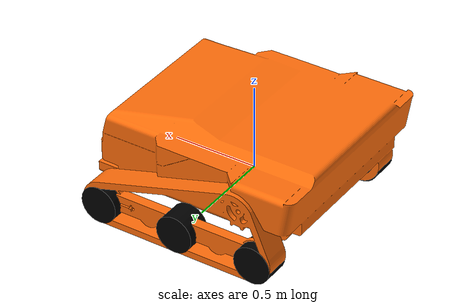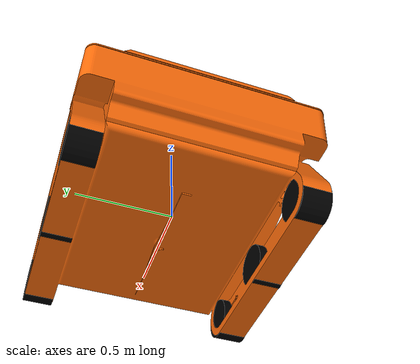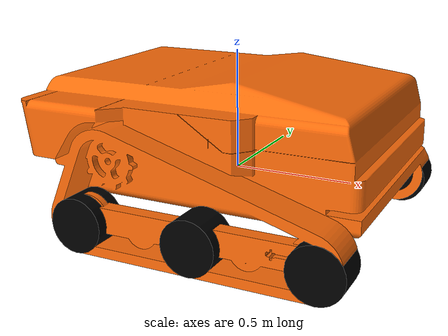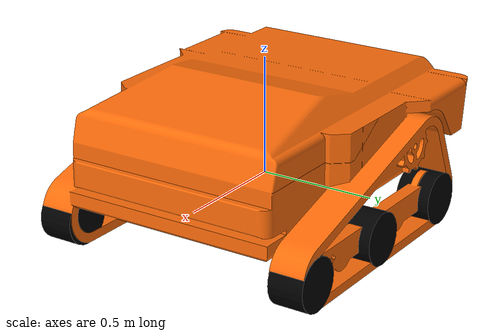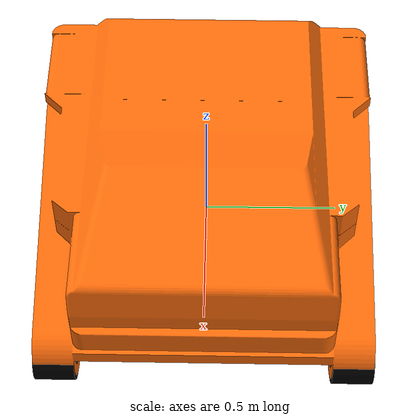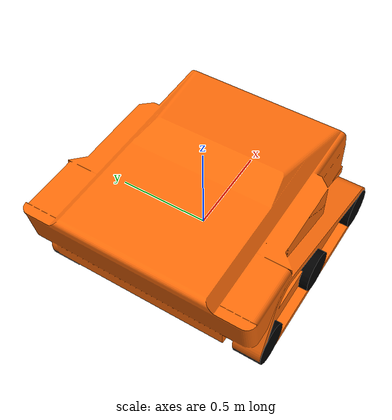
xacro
<?xml version="1.0"?>

<robot xmlns:xacro="http://ros.org/wiki/xacro" name="mowbot">

  <xacro:arg name="prefix" default="" />
  <xacro:arg name="gazebo_controllers" default="$(find mowbot_gazebo)/config/gazebo_control.yaml" />

  <xacro:include filename="$(find mowbot_description)/urdf/mowbot_macro.urdf.xacro" />

  <!-- Load husky description -->
  <xacro:mowbot prefix="$(arg prefix)" />

  <xacro:if value="$(arg is_sim)">
    <gazebo>
      <plugin name="$(arg prefix)gazebo_ros2_control" filename="libgazebo_ros2_control.so">
        <parameters>$(arg gazebo_controllers)</parameters>
      </plugin>

      <!-- other sim -->

    </gazebo>

    <gazebo reference="$(arg prefix)base_visual">
      <material>Gazebo/Orange</material>
    </gazebo>

  </xacro:if>

</robot>

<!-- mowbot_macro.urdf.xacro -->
<robot xmlns:xacro="http://ros.org/wiki/xacro">

  <xacro:arg name="robot_namespace" default="/" />
  <xacro:arg name="is_sim" default="false" />

  <!-- Included URDF/XACRO Files -->
  <xacro:include filename="$(find mowbot_description)/urdf/decorations.urdf.xacro" />
  <xacro:include filename="$(find mowbot_description)/urdf/track.urdf.xacro" />
  <xacro:include filename="$(find mowbot_description)/urdf/inertia_macros.xacro" />
  <xacro:property name="M_PI" value="3.14159"/>

  <xacro:macro name="mowbot" params="prefix">

    <!-- Robot Size -->
    <xacro:property name="robot_x_size" value="1.31600000" />
    <xacro:property name="robot_y_size" value="1.24000000" />
    <xacro:property name="robot_z_size" value="0.66160000" />

    <!-- Track Properties -->
    <xacro:property name="track_x_size" value="0.968" />
    <xacro:property name="track_y_size" value="0.15" />
    <xacro:property name="track_z_size" value="0.1" />
    <xacro:property name="track_wheel_radius" value="0.11" />
    <xacro:property name="track_wheel_length" value="0.15" />

    <!-- Track Mounting Position -->
    <xacro:property name="track_mount_x_size" value="0.1" />
    <xacro:property name="track_mount_y_size" value="${robot_y_size - track_wheel_length}" />
    <xacro:property name="track_mount_vertical_offset" value="0.11" />

    <!-- Body Box Size -->
    <xacro:property name="body_box_x_size" value="${robot_x_size}" />
    <xacro:property name="body_box_y_size" value="${robot_y_size}" />
    <xacro:property name="body_box_z_size" value="${robot_z_size - 2*track_wheel_radius}" />

    <!-- Robot mass -->
    <xacro:property name="robot_mass" value="310" />
    <xacro:property name="robot_body_mass" value="297" />
    <xacro:property name="robot_track_mass" value="0.5" />
    <xacro:property name="robot_track_wheel_mass" value="1" />

    <!-- Base link is the center of the robot's bottom plate -->
    <link name="${prefix}base_link">
    </link>

    <!-- body box link to store the robot's body inertia -->
    <link name="${prefix}body_box">
      <collision>
        <geometry>
          <box size="${body_box_x_size} ${body_box_y_size} ${body_box_z_size}"/>
        </geometry>
      </collision>
      <inertial_box mass="297" x="${body_box_x_size}" y="${body_box_y_size}" z="${body_box_z_size}">
        <origin xyz="0 0 0" />
      </inertial_box>
    </link>

    <joint name="${prefix}body_box_joint" type="fixed">
      <origin xyz="0 0 ${0.5*(robot_z_size-2*track_wheel_radius)}" rpy="0 0 0" />
      <parent link="${prefix}base_link" />
      <child link="${prefix}body_box" />
    </joint>

    <link name="${prefix}base_visual">
      <visual>
        <geometry>
          <mesh filename="package://mowbot_description/meshes/mowbot_v02.stl" scale="1.0 1.0 1.0"/>
        </geometry>
        <material name="orange"/>
      </visual>
    </link>

    <joint name="${prefix}base_visual_joint" type="fixed">
      <origin xyz="0 0 0" rpy="0 0 0" />
      <parent link="${prefix}base_link" />
      <child link="${prefix}base_visual" />
    </joint>

    <link name="${prefix}base_footprint">
    </link>

    <joint name="${prefix}base_footprint_joint" type="fixed">
      <origin xyz="0.0 0.0 -0.22" rpy="0.0 0.0 0.0"/>
      <parent link="${prefix}base_link" />
      <child link="${prefix}base_footprint" />
    </joint>

    <!-- Track macros -->
    <xacro:mowbot_track track_prefix="${prefix}left">
      <origin xyz="${track_mount_x_size} ${0.5*track_mount_y_size} ${-track_mount_vertical_offset}" rpy="0 0 0"/>
    </xacro:mowbot_track>

    <xacro:mowbot_track track_prefix="${prefix}right">
      <origin xyz="${track_mount_x_size} ${-0.5*track_mount_y_size} ${-track_mount_vertical_offset}" rpy="0 0 0"/>
    </xacro:mowbot_track>

    <!-- Include ROS2 Control -->
    <xacro:include filename="$(find mowbot_description)/urdf/ros2_control.urdf.xacro" />

  </xacro:macro>

</robot>

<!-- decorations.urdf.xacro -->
<robot name="mowbot_decorations" xmlns:xacro="http://ros.org/wiki/xacro">

  <material name="orange"><color rgba="1.0 0.4235 0.0392 1.0"/></material>
  <material name="grey"><color rgba="0.5 0.5 0.5 1.0"/></material>
  <material name="black"><color rgba="0.0 0.0 0.0 1.0"/></material>

</robot>

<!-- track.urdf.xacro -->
<robot xmlns:xacro="http://www.ros.org/wiki/xacro" name="mowbot_track">

  <!-- Macro for a single track -->
  <!-- TODO: try to fix the problem that the macros of inertia_macros.xacro are not working in this file -->
  <xacro:macro name="mowbot_track" params="track_prefix *joint_pose">

    <link name="${track_prefix}_track">

      <inertial>
          <origin xyz="0 0 0" />
          <mass value="${robot_track_mass}" />
          <inertia ixx="${(1/12) * robot_track_mass * (track_y_size*track_y_size+track_z_size*track_z_size)}" ixy="0.0" ixz="0.0"
                  iyy="${(1/12) * robot_track_mass * (track_x_size*track_x_size+track_z_size*track_z_size)}" iyz="0.0"
                  izz="${(1/12) * robot_track_mass * (track_x_size*track_x_size+track_y_size*track_y_size)}" />
      </inertial>
    </link>

    <joint name="${track_prefix}_track_joint" type="fixed">
      <parent link="base_link"/>
      <child link="${track_prefix}_track"/>
      <xacro:insert_block name="joint_pose"/>
      <axis xyz="0 1 0"/>
    </joint>

    <!-- Track Wheel -->
    <xacro:track_wheel
      wheel_prefix="${track_prefix}_track_front"
      parent_link="${track_prefix}_track"
      mass="${robot_track_wheel_mass}"
      radius="${track_wheel_radius}"
      length="${track_wheel_length}"
      origin_xyz="${-0.5*track_x_size} 0 0"
    />

    <xacro:track_wheel
      wheel_prefix="${track_prefix}_track_rear"
      parent_link="${track_prefix}_track"
      mass="${robot_track_wheel_mass}"
      radius="${track_wheel_radius}"
      length="${track_wheel_length}"
      origin_xyz="${0.5*track_x_size} 0 0"
    />

    <xacro:track_wheel
      wheel_prefix="${track_prefix}_track_middle"
      parent_link="${track_prefix}_track"
      mass="${robot_track_wheel_mass}"
      radius="${track_wheel_radius}"
      length="${track_wheel_length}"
      origin_xyz="0 0 0"
    />

  </xacro:macro>

  <!-- Macro for track wheel -->
  <xacro:macro name="track_wheel" params="wheel_prefix parent_link mass radius length origin_xyz">
    <link name="${wheel_prefix}_wheel">
      <visual>
        <origin xyz="0 0 0" rpy="${M_PI/2} 0 0"/>
        <geometry>
          <cylinder radius="${radius}" length="${length}"/>
        </geometry>
        <material name="black"/>
      </visual>
      <collision>
        <origin xyz="0 0 0" rpy="${M_PI/2} 0 0"/>
        <geometry>
          <cylinder radius="${radius}" length="${length}"/>
        </geometry>
      </collision>

      <inertial>
          <origin xyz="0 0 0" />
          <mass value="${mass}" />
          <inertia ixx="${(1/12) * mass * (3*radius*radius + length*length)}" ixy="0.0" ixz="0.0"
                  iyy="${(1/12) * mass * (3*radius*radius + length*length)}" iyz="0.0"
                  izz="${(1/2) * mass * (radius*radius)}" />
      </inertial>

    </link>

    <joint name="${wheel_prefix}_wheel_joint" type="continuous">
      <parent link="${parent_link}"/>
      <child link="${wheel_prefix}_wheel"/>
      <origin xyz="${origin_xyz}"/>
      <axis xyz="0 1 0"/>
    </joint>

    <gazebo reference="${wheel_prefix}_wheel">
      <material>Gazebo/Black</material>
      <mu1 value="5.0"/> <!-- Adjusted forward friction -->
      <mu2 value="3.0"/> <!-- Adjusted lateral friction -->
      <kp value="1000000.0"/> <!-- Tuned stiffness for stability -->
      <kd value="1.0"/> <!-- Reduced damping -->
      <fdir1 value="1 0 0"/> <!-- Aligned with forward motion -->
      <contact>
        <ode>
          <mu value="5.0"/> <!-- Consistent friction -->
          <mu2 value="3.0"/> <!-- Consistent lateral friction -->
          <minDepth value="0.001"/> <!-- Minimize separation -->
          <maxVel value="0.01"/> <!-- Slightly relaxed threshold -->
        </ode>
      </contact>
    </gazebo>

  </xacro:macro>

</robot>
